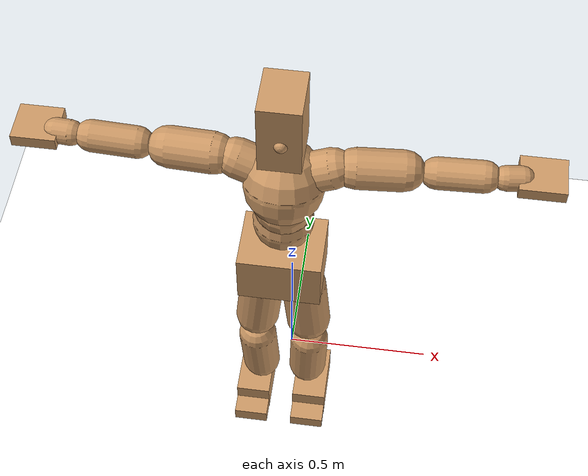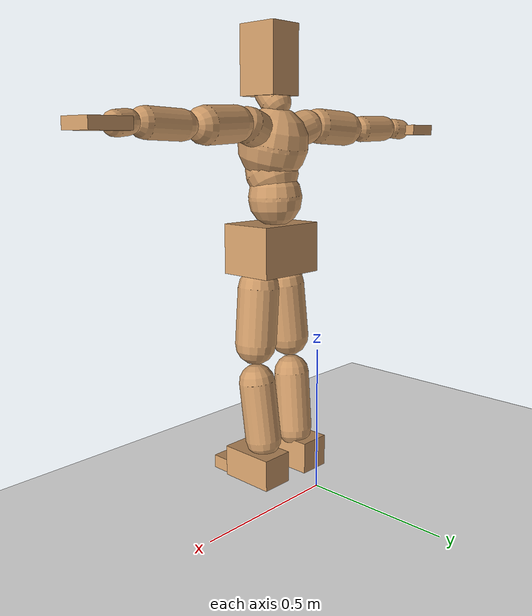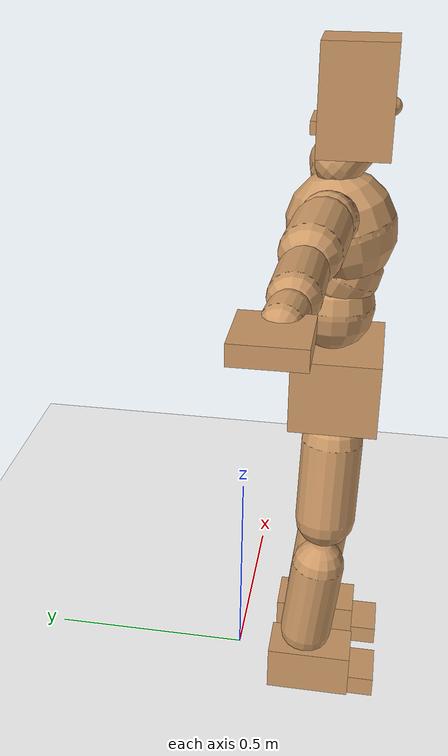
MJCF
<mujoco model="humanoid">
  <option integrator="implicitfast" />

  <visual>
    <global offwidth="1280" offheight="960" />
    <headlight active="1" ambient="0.34 0.34 0.34" diffuse="0.5 0.5 0.5" />
  </visual>

  <default>
    <joint damping="2" stiffness="2" armature="0.01" limited="true" solimplimit="0 .99 .01" />
    <geom condim="1" friction="0.7 0.005 0.0001" solimp=".99 .99 .003" solref="0.015 1" margin="0.001" rgba="0.8 0.6 .4 1" />
    <default class="smplcontact">
      <geom condim="3" friction="1. 0.005 0.0001" solref="0.015 1" solimp="0.98 0.98 0.001" priority="1" />
    </default>
    <default class="stiff_medium">
      <joint stiffness="10" />
    </default>
    <default class="stiff_medium_higher">
      <joint stiffness="50" />
    </default>
    <default class="stiff_high">
      <joint stiffness="100" />
    </default>
  </default>

  <asset>
    <texture type="skybox" builtin="gradient" rgb1="0.99 0.99 0.99" rgb2="0.608 0.828 0.892" width="100" />
    <texture builtin="flat" height="1278" mark="cross" markrgb="1 1 1" name="texgeom" random="0.01" rgb1="0.8 0.6 0.4" rgb2="0.8 0.6 0.4" type="cube" width="127" />
    <texture name="texplane" type="2d" builtin="checker" markrgb="1 1 1" rgb1="0.756 0.772 0.76" rgb2="0.6 0.6 0.6" width="100" height="100" />
    <material name="MatPlane" reflectance="0.5" texture="texplane" texrepeat="1 1" texuniform="true" />
    <material name="geom" texture="texgeom" texuniform="true" />
  </asset>

  <worldbody>
    <light name="tracking_light" pos="0 0 7" dir="0 0 -1" directional="true" cutoff="100" exponent="1" diffuse="1 1 1" specular="0.1 0.1 0.1" mode="trackcom" />
    <camera name="back" pos="0 3 2.4" xyaxes="-1 0 0 0 -1 2" mode="trackcom" />
    <camera name="side" pos="-3 0 2.4" xyaxes="0 -1 0 1 0 2" mode="trackcom" />
    <camera name="front_side" pos="-2.8 -2.8 0.8" xyaxes="0.5 -0.5 0 0.1 0.1 1" mode="trackcom" />
    <geom condim="3" name="floor" pos="0 0 0" rgba="1 1 1 1" size="100 100 .2" type="plane" material="MatPlane" />
    <body name="Pelvis" pos="-0.0018 -0.2233 0.845661" euler="90 0 0">
      <site name="Pelvis" size="0.01" />
      <freejoint name="Pelvis" />
      <geom type="box" pos="-0.0000 -0.0121 -0.0055" size="0.130952 0.088445 0.101675" quat="1.0000 0.0000 0.0000 0.0000" density="3165.830099" name="Pelvis" />
      <body name="L_Hip" pos="0.0616812 -0.0811175 -0.006035">
        <joint name="L_Hip_x" type="hinge" pos="0 0 0" axis="1 0 0" stiffness="12.36851034090909" range="-160.0 22.92" class="stiff_medium" damping="17.851965267063278" armature="0.011451757733951967"/>
        <joint name="L_Hip_y" type="hinge" pos="0 0 0" axis="0 1 0" stiffness="12.43597965909091" range="-70.0 70.0" class="stiff_medium" damping="14.288243721825658" armature="0.016416391329898198"/>
        <joint name="L_Hip_z" type="hinge" pos="0 0 0" axis="0 0 1" stiffness="12.4220025" range="-28.65 90.0" class="stiff_medium" damping="11.923013078833629" armature="0.011444067965534361"/>
        <geom type="capsule" density="2040.816327" fromto="0.00612375 -0.0665625 -0.00079875 0.0243175 -0.266427 -0.003195" size="0.0730312" name="L_Hip" />
        <body name="L_Knee" pos="0.0304412 -0.33299 -0.00399375">
          <joint name="L_Knee_x" type="hinge" pos="0 0 0" axis="1 0 0" range="-5.16 171.89" damping="9.985921488512282" armature="0.01214326888589518" stiffness="2.5662012045454548"/>
          <joint name="L_Knee_y" type="hinge" pos="0 0 0" axis="0 1 0" range="-4.58 6.88" damping="11.810748260390287" armature="0.017374927405609322" stiffness="2.508891318181818"/>
          <joint name="L_Knee_z" type="hinge" pos="0 0 0" axis="0 0 1" range="-6.88 4.58" damping="9.99958638283568" armature="0.012103404813024828" stiffness="2.581704522727273"/>
          <geom type="capsule" density="1234.567901" fromto="-0.00239625 -0.070645 -0.00772125 -0.00967375 -0.28258 -0.0310625" size="0.0642438" name="L_Knee" />
          <body name="L_Ankle" pos="-0.01207 -0.353225 -0.0387837">
            <joint name="L_Ankle_x" type="hinge" pos="0 0 0" axis="1 0 0" range="-45.84 45.84" class="stiff_medium" damping="9.468791834549247" armature="0.016757768795987015" stiffness="14.861766818181819"/>
            <joint name="L_Ankle_y" type="hinge" pos="0 0 0" axis="0 1 0" range="-74.48 22.92" class="stiff_medium" damping="4.770290463367707" armature="0.01701283964948982" stiffness="14.861762954545457"/>
            <joint name="L_Ankle_z" type="hinge" pos="0 0 0" axis="0 0 1" range="-4.58 4.58" class="stiff_medium" damping="9.99782310044421" armature="0.01868262569300733" stiffness="14.861768181818181"/>
            <geom type="box" pos="0.0206787 -0.0212113 0.0214775" size="0.0573563 0.0551 0.100938" quat="1.0000 0.0000 0.0000 0.0000" density="449.071558" name="L_Ankle" class="smplcontact" />
            <body name="L_Toe" pos="0.02343 -0.0495225 0.105879">
              <joint name="L_Toe_x" type="hinge" pos="0 0 0" axis="1 0 0" range="-91.67 22.92" armature="0.01965077153546487" damping="3.4178613882065814" stiffness="2.9723455"/>
              <joint name="L_Toe_y" type="hinge" pos="0 0 0" axis="0 1 0" range="-4.58 4.58" armature="0.020821548461788877" damping="3.5182051473181923" stiffness="2.9723455681818183"/>
              <joint name="L_Toe_z" type="hinge" pos="0 0 0" axis="0 0 1" range="-4.58 4.58" armature="0.023188802507055364" damping="3.7128170335050434" stiffness="2.9723420000000003"/>
              <geom type="box" pos="-0.0026625 0.00488125 0.02201" size="0.0567625 0.02375 0.0589" quat="1.0000 0.0000 0.0000 0.0000" density="423.206892" name="L_Toe" class="smplcontact" />
            </body>
          </body>
        </body>
      </body>
      <body name="R_Hip" pos="-0.0600837 -0.0803187 -0.00381625">
        <joint name="R_Hip_x" type="hinge" pos="0 0 0" axis="1 0 0" stiffness="12.36851034090909" range="-160.0 22.92" class="stiff_medium" damping="17.851965267063278" armature="0.011451757733951967"/>
        <joint name="R_Hip_y" type="hinge" pos="0 0 0" axis="0 1 0" stiffness="12.43597965909091" range="-70.0 70.0" class="stiff_medium" damping="14.288243721825658" armature="0.016416391329898198"/>
        <joint name="R_Hip_z" type="hinge" pos="0 0 0" axis="0 0 1" stiffness="12.4220025" range="-90.0 28.65" class="stiff_medium" damping="11.923013078833629" armature="0.011444067965534361"/>
        <geom type="capsule" density="2040.816327" fromto="-0.00683375 -0.0678937 -0.0015975 -0.0271575 -0.271664 -0.00630125" size="0.0719625" name="R_Hip" />
        <body name="R_Knee" pos="-0.0339913 -0.339557 -0.00789875">
          <joint name="R_Knee_x" type="hinge" pos="0 0 0" axis="1 0 0" range="-5.16 171.89" damping="9.985921488512282" armature="0.01214326888589518" stiffness="2.5662012045454548"/>
          <joint name="R_Knee_y" type="hinge" pos="0 0 0" axis="0 1 0" range="-6.88 4.58" damping="11.810748260390287" armature="0.017374927405609322" stiffness="2.508891318181818"/>
          <joint name="R_Knee_z" type="hinge" pos="0 0 0" axis="0 0 1" range="-4.58 6.88" damping="9.99958638283568" armature="0.012103404813024828" stiffness="2.581704522727273"/>
          <geom type="capsule" density="1234.567901" fromto="0.00284 -0.0707337 -0.00754375 0.0111825 -0.282846 -0.0299975" size="0.0642438" name="R_Knee" />
          <body name="R_Ankle" pos="0.0140225 -0.35358 -0.0375412">
            <joint name="R_Ankle_x" type="hinge" pos="0 0 0" axis="1 0 0" range="-45.84 45.84" class="stiff_medium" damping="9.468791834549247" armature="0.016757768795987015" stiffness="14.861766818181819"/>
            <joint name="R_Ankle_y" type="hinge" pos="0 0 0" axis="0 1 0" range="-22.92 74.48" class="stiff_medium" damping="4.770290463367707" armature="0.01701283964948982" stiffness="14.861762954545457"/>
            <joint name="R_Ankle_z" type="hinge" pos="0 0 0" axis="0 0 1" range="-4.58 4.58" class="stiff_medium" damping="9.99782310044421" armature="0.01868262569300733" stiffness="14.861768181818181"/>
            <geom type="box" pos="-0.018815 -0.0154425 0.02272" size="0.0573563 0.0567625 0.102719" quat="1.0000 0.0000 0.0000 0.0000" density="434.700981" name="R_Ankle" class="smplcontact" />
            <body name="R_Toe" pos="-0.0225425 -0.0426887 0.109429">
              <joint name="R_Toe_x" type="hinge" pos="0 0 0" axis="1 0 0" range="-91.67 22.92" armature="0.01965077153546487" damping="3.4178613882065814" stiffness="2.9723455"/>
              <joint name="R_Toe_y" type="hinge" pos="0 0 0" axis="0 1 0" range="-4.58 4.58" armature="0.020821548461788877" damping="3.5182051473181923" stiffness="2.9723455681818183"/>
              <joint name="R_Toe_z" type="hinge" pos="0 0 0" axis="0 0 1" range="-4.58 4.58" armature="0.023188802507055364" damping="3.7128170335050434" stiffness="2.9723420000000003"/>
              <geom type="box" pos="0.0037275 0.00399375 0.0201463" size="0.0568812 0.02565 0.0585437" quat="1.0000 0.0000 0.0000 0.0000" density="407.384095" name="R_Toe" class="smplcontact" />
            </body>
          </body>
        </body>
      </body>
      <body name="Torso" pos="-0.00235 0.10246 -0.025098">
        <joint name="Torso_x" type="hinge" pos="0 0 0" axis="1 0 0" range="-25.78 57.3" class="stiff_medium" damping="19.941202461893937" armature="0.0126899386743338" stiffness="13.92709840909091"/>
        <joint name="Torso_y" type="hinge" pos="0 0 0" axis="0 1 0" range="-57.3 57.3" class="stiff_high" damping="26.437533070348877" armature="0.01256913373806276" stiffness="139.01975454545453"/>
        <joint name="Torso_z" type="hinge" pos="0 0 0" axis="0 0 1" range="-34.38 34.38" class="stiff_high" damping="26.70168668290355" armature="0.012468405596314638" stiffness="142.9573465116279"/>
        <geom type="capsule" density="2040.816327" fromto="0.00235 0.057152 0.00047 0.00282 0.069842 0.000564" size="0.0942025" name="Torso" />
        <body name="Spine" pos="0.00517 0.127088 0.001034">
          <joint name="Spine_x" type="hinge" pos="0 0 0" axis="1 0 0" stiffness="13.520942727272729" range="-25.78 57.3" class="stiff_medium" damping="19.30614968667705" armature="0.012251854959543182"/>
          <joint name="Spine_y" type="hinge" pos="0 0 0" axis="0 1 0" stiffness="13.61998159090909" range="-57.3 57.3" class="stiff_high" damping="10.429468848945007" armature="0.012478658164968333"/>
          <joint name="Spine_z" type="hinge" pos="0 0 0" axis="0 0 1" stiffness="26.835930909090912" range="-34.38 34.38" class="stiff_high" damping="15.302956796542318" armature="0.01211996994244126"/>
          <geom type="capsule" density="2040.816327" fromto="0.000658 0.022372 0.010716 0.000752 0.027354 0.01316" size="0.0924875" name="Spine" />
          <body name="Chest" pos="0.00141 0.049726 0.023876">
            <joint name="Chest_x" type="hinge" pos="0 0 0" axis="1 0 0" stiffness="12.852892558139537" range="-25.78 57.3" class="stiff_medium" damping="18.678818297121833" armature="0.012064668673648239"/>
            <joint name="Chest_y" type="hinge" pos="0 0 0" axis="0 1 0" stiffness="13.09446418604651" range="-57.3 57.3" class="stiff_high" damping="10.19493632435119" armature="0.01240227420496644"/>
            <joint name="Chest_z" type="hinge" pos="0 0 0" axis="0 0 1" stiffness="26.033544090909086" range="-34.38 34.38" class="stiff_high" damping="15.010761345913915" armature="0.012020973754580498"/>
            <geom type="capsule" density="2040.816327" fromto="-0.000846 0.064108 -0.016262 -0.00094 0.078302 -0.019928" size="0.122745" name="Chest" />
            <body name="Neck" pos="-0.002632 0.201066 -0.040326">
              <joint name="Neck_x" type="hinge" pos="0 0 0" axis="1 0 0" range="-28.65 57.3" class="stiff_medium_higher" damping="11.458142872268247" armature="0.011436855819988415" stiffness="57.39734772727274"/>
              <joint name="Neck_y" type="hinge" pos="0 0 0" axis="0 1 0" range="-40.11 40.11" class="stiff_medium_higher" damping="11.782648325574947" armature="0.012150479253497817" stiffness="57.12976363636364"/>
              <joint name="Neck_z" type="hinge" pos="0 0 0" axis="0 0 1" range="-40.11 40.11" class="stiff_medium_higher" damping="11.3646916074327" armature="0.011419775964869988" stiffness="56.54936477272726"/>
              <geom type="capsule" density="1000" fromto="0.00094 0.01222 0.009682 0.003854 0.04888 0.038634" size="0.05341" name="Neck" />
              <body name="Head" pos="0.0052 0.065 0.0513">
                <joint name="Head_x" type="hinge" pos="0 0 0" axis="1 0 0" range="-28.65 57.3" class="stiff_medium_higher" damping="2.271549721595956" armature="0.01155096934766387" stiffness="55.8388"/>
                <joint name="Head_y" type="hinge" pos="0 0 0" axis="0 1 0" range="-40.11 40.11" class="stiff_medium_higher" damping="2.3135159305113246" armature="0.011981713344327065" stiffness="55.8388"/>
                <joint name="Head_z" type="hinge" pos="0 0 0" axis="0 0 1" range="-40.11 40.11" class="stiff_medium_higher" damping="2.269451669247277" armature="0.011529641752350632" stiffness="55.8388"/>
                <geom type="box" pos="-0.0042 0.0876 -0.0116" size="0.0628725 0.119728 0.07885" quat="1.0000 0.0000 0.0000 0.0000" density="1018.069894" name="Head" />
                <geom type="capsule" name="nose" size="0.02075 0.010375" pos="0 0.07 0.05" quat="1 0 0 0" mass="0" contype="0" conaffinity="0" />
              </body>
            </body>
            <body name="L_Thorax" pos="0.071708 0.110747 -0.031031">
              <joint name="L_Thorax_x" type="hinge" pos="0 0 0" axis="1 0 0" range="-10.89 4.58" class="stiff_medium_higher" damping="28.626748650549768" armature="0.01567730914215938" stiffness="65.34051306818182"/>
              <joint name="L_Thorax_y" type="hinge" pos="0 0 0" axis="0 1 0" range="-28.65 17.19" class="stiff_medium_higher" damping="25.08773278793194" armature="0.012125206485934237" stiffness="64.88490909090909"/>
              <joint name="L_Thorax_z" type="hinge" pos="0 0 0" axis="0 0 1" range="-31.51 40.11" class="stiff_medium_higher" damping="25.086010443016477" armature="0.012121977997280955" stiffness="64.89327897727273"/>
              <geom type="capsule" density="1000" fromto="0.016562 0.005551 -0.001638 0.066248 0.022204 -0.006461" size="0.0618688" name="L_Thorax" />
              <body name="L_Shoulder" pos="0.08281 0.027755 -0.008099">
                <joint name="L_Shoulder_x" type="hinge" pos="0 0 0" axis="1 0 0" range="-97.4 97.4" class="stiff_medium" damping="8.957943445981686" armature="0.017008419106326677" stiffness="13.105397045454543"/>
                <joint name="L_Shoulder_y" type="hinge" pos="0 0 0" axis="0 1 0" range="-108.86 80.21" class="stiff_medium" damping="7.577464584362842" armature="0.012227943711016397" stiffness="13.043432613636362"/>
                <joint name="L_Shoulder_z" type="hinge" pos="0 0 0" axis="0 0 1" range="-97.4 85.94" class="stiff_medium" damping="7.567968848271233" armature="0.012223527931672131" stiffness="13.015462386363637"/>
                <geom type="capsule" density="1000" fromto="0.047229 -0.002366 -0.005005 0.189007 -0.009282 -0.02002" size="0.0613938" name="L_Shoulder" />
                <body name="L_Elbow" pos="0.236236 -0.011648 -0.025025">
                  <joint name="L_Elbow_x" type="hinge" pos="0 0 0" axis="1 0 0" range="-17.19 4.58" damping="8.02999271813939" armature="0.01926050643038712" stiffness="2.6782590909090915"/>
                  <joint name="L_Elbow_y" type="hinge" pos="0 0 0" axis="0 1 0" range="-180.0 17.19" damping="6.529036199761387" armature="0.01273410511843796" stiffness="2.678056340909091"/>
                  <joint name="L_Elbow_z" type="hinge" pos="0 0 0" axis="0 0 1" range="-100.84 4.58" damping="6.524422721938703" armature="0.012710921306049599" stiffness="2.6791506818181814"/>
                  <geom type="capsule" density="1000" fromto="0.045318 0.001638 -0.000182 0.181454 0.006552 -0.000819" size="0.0480938" name="L_Elbow" />
                  <body name="L_Wrist" pos="0.226772 0.00819 -0.001092">
                    <joint name="L_Wrist_x" type="hinge" pos="0 0 0" axis="1 0 0" range="-180.0 22.92" armature="0.02019987910712893" damping="3.4354746392366655" stiffness="2.9214249090909092"/>
                    <joint name="L_Wrist_y" type="hinge" pos="0 0 0" axis="0 1 0" range="-17.19 17.19" armature="0.014674368014772642" damping="2.916822459527683" stiffness="2.8988823409090907"/>
                    <joint name="L_Wrist_z" type="hinge" pos="0 0 0" axis="0 0 1" range="-22.92 22.92" armature="0.014359094784382772" damping="2.8893808376416996" stiffness="2.9070501136363633"/>
                    <geom type="capsule" density="1000" fromto="0.015288 -0.001456 -0.00273 0.061152 -0.005915 -0.01092" size="0.0377625" name="L_Wrist" class="smplcontact" />
                    <body name="L_Hand" pos="0.07644 -0.007462 -0.013559">
                      <joint name="L_Hand_x" type="hinge" pos="0 0 0" axis="1 0 0" range="-17.19 17.19" armature="0.023189285732447412" damping="3.7596272721316395" stiffness="3.0477"/>
                      <joint name="L_Hand_y" type="hinge" pos="0 0 0" axis="0 1 0" range="-51.57 51.57" armature="0.018478553424018586" damping="3.356101526187235" stiffness="3.0477"/>
                      <joint name="L_Hand_z" type="hinge" pos="0 0 0" axis="0 0 1" range="-91.67 91.67" armature="0.01722284324673942" damping="3.2400635599656904" stiffness="3.0477"/>
                      <geom type="box" pos="0.044863 0.00091 -0.005278" size="0.0694688 0.0187625 0.0638875" quat="1.0000 0.0000 0.0000 0.0000" density="400.552564" name="L_Hand" class="smplcontact" />
                    </body>
                  </body>
                </body>
              </body>
            </body>
            <body name="R_Thorax" pos="-0.074438 0.108108 -0.035126">
              <joint name="R_Thorax_x" type="hinge" pos="0 0 0" axis="1 0 0" range="-10.89 4.58" class="stiff_medium_higher" damping="28.626748650549768" armature="0.01567730914215938" stiffness="65.34051306818182"/>
              <joint name="R_Thorax_y" type="hinge" pos="0 0 0" axis="0 1 0" range="-17.19 28.65" class="stiff_medium_higher" damping="25.08773278793194" armature="0.012125206485934237" stiffness="64.88490909090909"/>
              <joint name="R_Thorax_z" type="hinge" pos="0 0 0" axis="0 0 1" range="-40.11 31.51" class="stiff_medium_higher" damping="25.086010443016477" armature="0.012121977997280955" stiffness="64.89327897727273"/>
              <geom type="capsule" density="1000" fromto="-0.017472 0.005915 -0.001638 -0.069888 0.02366 -0.006643" size="0.0606812" name="R_Thorax" />
              <body name="R_Shoulder" pos="-0.08736 0.029666 -0.008281">
                <joint name="R_Shoulder_x" type="hinge" pos="0 0 0" axis="1 0 0" range="-97.4 97.4" class="stiff_medium" damping="8.957943445981686" armature="0.017008419106326677" stiffness="13.105397045454543"/>
                <joint name="R_Shoulder_y" type="hinge" pos="0 0 0" axis="0 1 0" range="-80.21 108.86" class="stiff_medium" damping="7.577464584362842" armature="0.012227943711016397" stiffness="13.043432613636362"/>
                <joint name="R_Shoulder_z" type="hinge" pos="0 0 0" axis="0 0 1" range="-85.94 97.4" class="stiff_medium" damping="7.567968848271233" armature="0.012223527931672131" stiffness="13.015462386363637"/>
                <geom type="capsule" density="1000" fromto="-0.046137 -0.002457 -0.003913 -0.18473 -0.009737 -0.015561" size="0.0630563" name="R_Shoulder" />
                <body name="R_Elbow" pos="-0.230867 -0.012103 -0.019474">
                  <joint name="R_Elbow_x" type="hinge" pos="0 0 0" axis="1 0 0" range="-17.19 4.58" damping="8.02999271813939" armature="0.01926050643038712" stiffness="2.6782590909090915"/>
                  <joint name="R_Elbow_y" type="hinge" pos="0 0 0" axis="0 1 0" range="-17.19 180.0" damping="6.529036199761387" armature="0.01273410511843796" stiffness="2.678056340909091"/>
                  <joint name="R_Elbow_z" type="hinge" pos="0 0 0" axis="0 0 1" range="-4.58 100.84" damping="6.524422721938703" armature="0.012710921306049599" stiffness="2.6791506818181814"/>
                  <geom type="capsule" density="1000" fromto="-0.046501 0.001456 -0.001001 -0.185822 0.005642 -0.004004" size="0.04845" name="R_Elbow" />
                  <body name="R_Wrist" pos="-0.232323 0.007098 -0.005096">
                    <joint name="R_Wrist_x" type="hinge" pos="0 0 0" axis="1 0 0" range="-180.0 22.92" armature="0.02019987910712893" damping="3.4354746392366655" stiffness="2.9214249090909092"/>
                    <joint name="R_Wrist_y" type="hinge" pos="0 0 0" axis="0 1 0" range="-17.19 17.19" armature="0.014674368014772642" damping="2.916822459527683" stiffness="2.8988823409090907"/>
                    <joint name="R_Wrist_z" type="hinge" pos="0 0 0" axis="0 0 1" range="-22.92 22.92" armature="0.014359094784382772" damping="2.8893808376416996" stiffness="2.9070501136363633"/>
                    <geom type="capsule" density="1000" fromto="-0.015379 -0.001092 -0.001911 -0.061607 -0.004459 -0.007553" size="0.0387125" name="R_Wrist" class="smplcontact" />
                    <body name="R_Hand" pos="-0.076986 -0.005551 -0.009373">
                      <joint name="R_Hand_x" type="hinge" pos="0 0 0" axis="1 0 0" range="-17.19 17.19" armature="0.023189285732447412" damping="3.7596272721316395" stiffness="3.0477"/>
                      <joint name="R_Hand_y" type="hinge" pos="0 0 0" axis="0 1 0" range="-51.57 51.57" armature="0.018478553424018586" damping="3.356101526187235" stiffness="3.0477"/>
                      <joint name="R_Hand_z" type="hinge" pos="0 0 0" axis="0 0 1" range="-91.67 91.67" armature="0.01722284324673942" damping="3.2400635599656904" stiffness="3.0477"/>
                      <geom type="box" pos="-0.042042 -0.000819 -0.007189" size="0.0675687 0.019475 0.0648375" quat="1.0000 0.0000 0.0000 0.0000" density="403.679611" name="R_Hand" class="smplcontact" />
                    </body>
                  </body>
                </body>
              </body>
            </body>
          </body>
        </body>
      </body>
    </body>
  </worldbody>
  <actuator>
    <general name="L_Hip_x" joint="L_Hip_x" biastype="affine" gainprm="355.38448690418045" biasprm="-266.32465266140963 -222.6331861363636 -2.380262035608437" ctrllimited="true" ctrlrange="-1 1" forcerange="-445.2663722727272 445.2663722727272" />
    <general name="L_Hip_y" joint="L_Hip_y" biastype="affine" gainprm="273.4814763603447" biasprm="0.0 -223.8476338636364 -2.8576487443651315" ctrllimited="true" ctrlrange="-1 1" forcerange="-447.6952677272728 447.6952677272728" />
    <general name="L_Hip_z" joint="L_Hip_z" biastype="affine" gainprm="231.5150519349553" biasprm="119.70879423691112 -223.596045 -2.3846026157667257" ctrllimited="true" ctrlrange="-1 1" forcerange="-447.19209 447.19209" />
    <general name="L_Knee_x" joint="L_Knee_x" biastype="affine" gainprm="356.84245367927053" biasprm="336.0425998415406 -230.95810840909093 -2.4964803721280706" ctrllimited="true" ctrlrange="-1 1" forcerange="-461.91621681818185 461.91621681818185" />
    <general name="L_Knee_y" joint="L_Knee_y" biastype="affine" gainprm="22.581685139495182" biasprm="4.532100856966746 -225.8002186363636 -2.952687065097572" ctrllimited="true" ctrlrange="-1 1" forcerange="-451.6004372727272 451.6004372727272" />
    <general name="L_Knee_z" joint="L_Knee_z" biastype="affine" gainprm="23.237052252102792" biasprm="-4.663631778345238 -232.35340704545456 -2.49989659570892" ctrllimited="true" ctrlrange="-1 1" forcerange="-464.7068140909091 464.7068140909091" />
    <general name="L_Ankle_x" joint="L_Ankle_x" biastype="affine" gainprm="107.01260320769558" biasprm="0.0 -133.75590136363635 -3.156263944849749" ctrllimited="true" ctrlrange="-1 1" forcerange="-267.5118027272727 267.5118027272727" />
    <general name="L_Ankle_y" joint="L_Ankle_y" biastype="affine" gainprm="113.68918894785185" biasprm="-60.182901254119514 -133.7558665909091 -3.180193642245138" ctrllimited="true" ctrlrange="-1 1" forcerange="-267.5117331818182 267.5117331818182" />
    <general name="L_Ankle_z" joint="L_Ankle_z" biastype="affine" gainprm="10.691923378312188" biasprm="0.0 -133.75591363636363 -3.33260770014807" ctrllimited="true" ctrlrange="-1 1" forcerange="-267.51182727272726 267.51182727272726" />
    <general name="L_Toe_x" joint="L_Toe_x" biastype="affine" gainprm="107.00298219714685" biasprm="-64.19805415877342 -107.004438 -1.3671445552826327" ctrllimited="true" ctrlrange="-1 1" forcerange="-214.008876 214.008876" />
    <general name="L_Toe_y" joint="L_Toe_y" biastype="affine" gainprm="8.553515484852044" biasprm="0.0 -107.00444045454546 -1.407282058927277" ctrllimited="true" ctrlrange="-1 1" forcerange="-214.00888090909092 214.00888090909092" />
    <general name="L_Toe_z" joint="L_Toe_z" biastype="affine" gainprm="8.553505216699257" biasprm="0.0 -107.00431200000001 -1.4851268134020175" ctrllimited="true" ctrlrange="-1 1" forcerange="-214.00862400000003 214.00862400000003" />
    <general name="R_Hip_x" joint="R_Hip_x" biastype="affine" gainprm="355.38448690418045" biasprm="-266.32465266140963 -222.6331861363636 -2.380262035608437" ctrllimited="true" ctrlrange="-1 1" forcerange="-445.2663722727272 445.2663722727272" />
    <general name="R_Hip_y" joint="R_Hip_y" biastype="affine" gainprm="273.4814763603447" biasprm="0.0 -223.8476338636364 -2.8576487443651315" ctrllimited="true" ctrlrange="-1 1" forcerange="-447.6952677272728 447.6952677272728" />
    <general name="R_Hip_z" joint="R_Hip_z" biastype="affine" gainprm="231.5150519349553" biasprm="-119.70879423691112 -223.596045 -2.3846026157667257" ctrllimited="true" ctrlrange="-1 1" forcerange="-447.19209 447.19209" />
    <general name="R_Knee_x" joint="R_Knee_x" biastype="affine" gainprm="356.84245367927053" biasprm="336.0425998415406 -230.95810840909093 -2.4964803721280706" ctrllimited="true" ctrlrange="-1 1" forcerange="-461.91621681818185 461.91621681818185" />
    <general name="R_Knee_y" joint="R_Knee_y" biastype="affine" gainprm="22.581685139495182" biasprm="-4.532100856966746 -225.8002186363636 -2.952687065097572" ctrllimited="true" ctrlrange="-1 1" forcerange="-451.6004372727272 451.6004372727272" />
    <general name="R_Knee_z" joint="R_Knee_z" biastype="affine" gainprm="23.237052252102792" biasprm="4.663631778345238 -232.35340704545456 -2.49989659570892" ctrllimited="true" ctrlrange="-1 1" forcerange="-464.7068140909091 464.7068140909091" />
    <general name="R_Ankle_x" joint="R_Ankle_x" biastype="affine" gainprm="107.01260320769558" biasprm="0.0 -133.75590136363635 -3.156263944849749" ctrllimited="true" ctrlrange="-1 1" forcerange="-267.5118027272727 267.5118027272727" />
    <general name="R_Ankle_y" joint="R_Ankle_y" biastype="affine" gainprm="113.68918894785185" biasprm="60.182901254119514 -133.7558665909091 -3.180193642245138" ctrllimited="true" ctrlrange="-1 1" forcerange="-267.5117331818182 267.5117331818182" />
    <general name="R_Ankle_z" joint="R_Ankle_z" biastype="affine" gainprm="10.691923378312188" biasprm="0.0 -133.75591363636363 -3.33260770014807" ctrllimited="true" ctrlrange="-1 1" forcerange="-267.51182727272726 267.51182727272726" />
    <general name="R_Toe_x" joint="R_Toe_x" biastype="affine" gainprm="107.00298219714685" biasprm="-64.19805415877342 -107.004438 -1.3671445552826327" ctrllimited="true" ctrlrange="-1 1" forcerange="-214.008876 214.008876" />
    <general name="R_Toe_y" joint="R_Toe_y" biastype="affine" gainprm="8.553515484852044" biasprm="0.0 -107.00444045454546 -1.407282058927277" ctrllimited="true" ctrlrange="-1 1" forcerange="-214.00888090909092 214.00888090909092" />
    <general name="R_Toe_z" joint="R_Toe_z" biastype="affine" gainprm="8.553505216699257" biasprm="0.0 -107.00431200000001 -1.4851268134020175" ctrllimited="true" ctrlrange="-1 1" forcerange="-214.00862400000003 214.00862400000003" />
    <general name="Torso_x" joint="Torso_x" biastype="affine" gainprm="242.33477837153734" biasprm="91.94020479382348 -334.25036181818183 -5.317653989838384" ctrllimited="true" ctrlrange="-1 1" forcerange="-501.3755427272728 501.3755427272728" />
    <general name="Torso_y" joint="Torso_y" biastype="affine" gainprm="333.6719878420662" biasprm="0.0 -333.6474109090909 -5.287506614069775" ctrllimited="true" ctrlrange="-1 1" forcerange="-500.4711163636364 500.4711163636364" />
    <general name="Torso_z" joint="Torso_z" biastype="affine" gainprm="205.87374280638136" biasprm="0.0 -343.097631627907 -5.34033733658071" ctrllimited="true" ctrlrange="-1 1" forcerange="-514.6464474418605 514.6464474418605" />
    <general name="Spine_x" joint="Spine_x" biastype="affine" gainprm="235.26757426005477" biasprm="89.25895450983299 -324.5026254545455 -5.14830658311388" ctrllimited="true" ctrlrange="-1 1" forcerange="-486.7539381818182 486.7539381818182" />
    <general name="Spine_y" joint="Spine_y" biastype="affine" gainprm="326.90363658533556" biasprm="0.0 -326.87955818181814 -5.214734424472503" ctrllimited="true" ctrlrange="-1 1" forcerange="-490.31933727272724 490.31933727272724" />
    <general name="Spine_z" joint="Spine_z" biastype="affine" gainprm="193.2329353041896" biasprm="0.0 -322.0311709090909 -5.10098559884744" ctrllimited="true" ctrlrange="-1 1" forcerange="-483.0467563636364 483.0467563636364" />
    <general name="Chest_x" joint="Chest_x" biastype="affine" gainprm="223.643344652236" biasprm="84.84879903031388 -308.4694213953489 -4.9810182125658224" ctrllimited="true" ctrlrange="-1 1" forcerange="-462.7041320930233 462.7041320930233" />
    <general name="Chest_y" joint="Chest_y" biastype="affine" gainprm="314.29028982037875" biasprm="0.0 -314.26714046511626 -5.097468162175595" ctrllimited="true" ctrlrange="-1 1" forcerange="-471.40071069767436 471.40071069767436" />
    <general name="Chest_z" joint="Chest_z" biastype="affine" gainprm="187.4553246577805" biasprm="0.0 -312.402529090909 -5.003587115304638" ctrllimited="true" ctrlrange="-1 1" forcerange="-468.60379363636355 468.60379363636355" />
    <general name="Neck_x" joint="Neck_x" biastype="affine" gainprm="30.996850875757126" biasprm="10.332283625252376 -41.326090363636375 -0.9166514297814597" ctrllimited="true" ctrlrange="-1 1" forcerange="-82.65218072727275 82.65218072727275" />
    <general name="Neck_y" joint="Neck_y" biastype="affine" gainprm="28.795521834737592" biasprm="0.0 -41.133429818181824 -0.9426118660459958" ctrllimited="true" ctrlrange="-1 1" forcerange="-82.26685963636365 82.26685963636365" />
    <general name="Neck_z" joint="Neck_z" biastype="affine" gainprm="28.50297925995858" biasprm="0.0 -40.71554263636363 -0.909175328594616" ctrllimited="true" ctrlrange="-1 1" forcerange="-81.43108527272726 81.43108527272726" />
    <general name="Head_x" joint="Head_x" biastype="affine" gainprm="20.103448738959912" biasprm="6.701149579653304 -26.802624 -0.9086198886383825" ctrllimited="true" ctrlrange="-1 1" forcerange="-53.605248 53.605248" />
    <general name="Head_y" joint="Head_y" biastype="affine" gainprm="18.763218823029252" biasprm="0.0 -26.802624 -0.9254063722045299" ctrllimited="true" ctrlrange="-1 1" forcerange="-53.605248 53.605248" />
    <general name="Head_z" joint="Head_z" biastype="affine" gainprm="18.763218823029252" biasprm="0.0 -26.802624 -0.9077806676989107" ctrllimited="true" ctrlrange="-1 1" forcerange="-53.605248 53.605248" />
    <general name="L_Thorax_x" joint="L_Thorax_x" biastype="affine" gainprm="21.17051718130072" biasprm="-8.635162470200878 -156.81723136363635 -2.2901398920439813" ctrllimited="true" ctrlrange="-1 1" forcerange="-313.6344627272727 313.6344627272727" />
    <general name="L_Thorax_y" joint="L_Thorax_y" biastype="affine" gainprm="62.294101059533986" biasprm="-15.573525264883497 -155.72378181818183 -2.0070186230345555" ctrllimited="true" ctrlrange="-1 1" forcerange="-311.44756363636367 311.44756363636367" />
    <general name="L_Thorax_z" joint="L_Thorax_z" biastype="affine" gainprm="97.34029305159014" biasprm="11.688446247468235 -155.74386954545454 -2.006880835441318" ctrllimited="true" ctrlrange="-1 1" forcerange="-311.4877390909091 311.4877390909091" />
    <general name="L_Shoulder_x" joint="L_Shoulder_x" biastype="affine" gainprm="106.93693809143352" biasprm="0.0 -62.90590581818181 -2.3887849189284496" ctrllimited="true" ctrlrange="-1 1" forcerange="-125.81181163636361 125.81181163636361" />
    <general name="L_Shoulder_y" joint="L_Shoulder_y" biastype="affine" gainprm="103.3006685749538" biasprm="-15.653272093258721 -62.60847654545454 -2.020657222496758" ctrllimited="true" ctrlrange="-1 1" forcerange="-125.21695309090909 125.21695309090909" />
    <general name="L_Shoulder_z" joint="L_Shoulder_z" biastype="affine" gainprm="99.95521041982744" biasprm="-6.247882139256164 -62.474219454545455 -2.0181250262056625" ctrllimited="true" ctrlrange="-1 1" forcerange="-124.94843890909091 124.94843890909091" />
    <general name="L_Elbow_x" joint="L_Elbow_x" biastype="affine" gainprm="18.317276006760743" biasprm="-10.610052845441114 -96.41732727272729 -1.2847988349023025" ctrllimited="true" ctrlrange="-1 1" forcerange="-192.83465454545458 192.83465454545458" />
    <general name="L_Elbow_y" joint="L_Elbow_y" biastype="affine" gainprm="165.90308777244488" biasprm="-136.9779487815394 -96.41002827272727 -1.044645791961822" ctrllimited="true" ctrlrange="-1 1" forcerange="-192.82005654545455 192.82005654545455" />
    <general name="L_Elbow_z" joint="L_Elbow_z" biastype="affine" gainprm="88.72990665272499" biasprm="-81.02011776125318 -96.44942454545453 -1.0439076355101926" ctrllimited="true" ctrlrange="-1 1" forcerange="-192.89884909090907 192.89884909090907" />
    <general name="L_Wrist_x" joint="L_Wrist_x" biastype="affine" gainprm="31.039749223624924" biasprm="-24.027812970860452 -17.528549454545455 -1.3741898556946663" ctrllimited="true" ctrlrange="-1 1" forcerange="-35.05709890909091 35.05709890909091" />
    <general name="L_Wrist_y" joint="L_Wrist_y" biastype="affine" gainprm="5.218372577915538" biasprm="0.0 -17.393294045454546 -1.1667289838110733" ctrllimited="true" ctrlrange="-1 1" forcerange="-34.78658809090909 34.78658809090909" />
    <general name="L_Wrist_z" joint="L_Wrist_z" biastype="affine" gainprm="6.977434202391674" biasprm="0.0 -17.442300681818182 -1.1557523350566798" ctrllimited="true" ctrlrange="-1 1" forcerange="-34.884601363636364 34.884601363636364" />
    <general name="L_Hand_x" joint="L_Hand_x" biastype="affine" gainprm="5.4862640960880364" biasprm="0.0 -18.2862 -1.503850908852656" ctrllimited="true" ctrlrange="-1 1" forcerange="-36.5724 36.5724" />
    <general name="L_Hand_y" joint="L_Hand_y" biastype="affine" gainprm="16.458792288264107" biasprm="0.0 -18.2862 -1.342440610474894" ctrllimited="true" ctrlrange="-1 1" forcerange="-36.5724 36.5724" />
    <general name="L_Hand_z" joint="L_Hand_z" biastype="affine" gainprm="29.256883635159408" biasprm="0.0 -18.2862 -1.2960254239862763" ctrllimited="true" ctrlrange="-1 1" forcerange="-36.5724 36.5724" />
    <general name="R_Thorax_x" joint="R_Thorax_x" biastype="affine" gainprm="21.17051718130072" biasprm="-8.635162470200878 -156.81723136363635 -2.2901398920439813" ctrllimited="true" ctrlrange="-1 1" forcerange="-313.6344627272727 313.6344627272727" />
    <general name="R_Thorax_y" joint="R_Thorax_y" biastype="affine" gainprm="62.294101059533986" biasprm="15.573525264883488 -155.72378181818183 -2.0070186230345555" ctrllimited="true" ctrlrange="-1 1" forcerange="-311.44756363636367 311.44756363636367" />
    <general name="R_Thorax_z" joint="R_Thorax_z" biastype="affine" gainprm="97.34029305159014" biasprm="-11.688446247468235 -155.74386954545454 -2.006880835441318" ctrllimited="true" ctrlrange="-1 1" forcerange="-311.4877390909091 311.4877390909091" />
    <general name="R_Shoulder_x" joint="R_Shoulder_x" biastype="affine" gainprm="106.93693809143352" biasprm="0.0 -62.90590581818181 -2.3887849189284496" ctrllimited="true" ctrlrange="-1 1" forcerange="-125.81181163636361 125.81181163636361" />
    <general name="R_Shoulder_y" joint="R_Shoulder_y" biastype="affine" gainprm="103.3006685749538" biasprm="15.653272093258721 -62.60847654545454 -2.020657222496758" ctrllimited="true" ctrlrange="-1 1" forcerange="-125.21695309090909 125.21695309090909" />
    <general name="R_Shoulder_z" joint="R_Shoulder_z" biastype="affine" gainprm="99.95521041982744" biasprm="6.247882139256149 -62.474219454545455 -2.0181250262056625" ctrllimited="true" ctrlrange="-1 1" forcerange="-124.94843890909091 124.94843890909091" />
    <general name="R_Elbow_x" joint="R_Elbow_x" biastype="affine" gainprm="18.317276006760743" biasprm="-10.610052845441114 -96.41732727272729 -1.2847988349023025" ctrllimited="true" ctrlrange="-1 1" forcerange="-192.83465454545458 192.83465454545458" />
    <general name="R_Elbow_y" joint="R_Elbow_y" biastype="affine" gainprm="165.90308777244488" biasprm="136.9779487815394 -96.41002827272727 -1.044645791961822" ctrllimited="true" ctrlrange="-1 1" forcerange="-192.82005654545455 192.82005654545455" />
    <general name="R_Elbow_z" joint="R_Elbow_z" biastype="affine" gainprm="88.72990665272499" biasprm="81.02011776125316 -96.44942454545453 -1.0439076355101926" ctrllimited="true" ctrlrange="-1 1" forcerange="-192.89884909090907 192.89884909090907" />
    <general name="R_Wrist_x" joint="R_Wrist_x" biastype="affine" gainprm="31.039749223624924" biasprm="-24.027812970860452 -17.528549454545455 -1.3741898556946663" ctrllimited="true" ctrlrange="-1 1" forcerange="-35.05709890909091 35.05709890909091" />
    <general name="R_Wrist_y" joint="R_Wrist_y" biastype="affine" gainprm="5.218372577915538" biasprm="0.0 -17.393294045454546 -1.1667289838110733" ctrllimited="true" ctrlrange="-1 1" forcerange="-34.78658809090909 34.78658809090909" />
    <general name="R_Wrist_z" joint="R_Wrist_z" biastype="affine" gainprm="6.977434202391674" biasprm="0.0 -17.442300681818182 -1.1557523350566798" ctrllimited="true" ctrlrange="-1 1" forcerange="-34.884601363636364 34.884601363636364" />
    <general name="R_Hand_x" joint="R_Hand_x" biastype="affine" gainprm="5.4862640960880364" biasprm="0.0 -18.2862 -1.503850908852656" ctrllimited="true" ctrlrange="-1 1" forcerange="-36.5724 36.5724" />
    <general name="R_Hand_y" joint="R_Hand_y" biastype="affine" gainprm="16.458792288264107" biasprm="0.0 -18.2862 -1.342440610474894" ctrllimited="true" ctrlrange="-1 1" forcerange="-36.5724 36.5724" />
    <general name="R_Hand_z" joint="R_Hand_z" biastype="affine" gainprm="29.256883635159408" biasprm="0.0 -18.2862 -1.2960254239862763" ctrllimited="true" ctrlrange="-1 1" forcerange="-36.5724 36.5724" />
  </actuator>
  <contact>
    <exclude body1="Torso" body2="Chest" />
    <exclude body1="Head" body2="Chest" />
    <exclude body1="R_Knee" body2="R_Toe" />
    <exclude body1="R_Knee" body2="L_Ankle" />
    <exclude body1="R_Knee" body2="L_Toe" />
    <exclude body1="L_Knee" body2="L_Toe" />
    <exclude body1="L_Knee" body2="R_Ankle" />
    <exclude body1="L_Knee" body2="R_Toe" />
    <exclude body1="L_Shoulder" body2="Chest" />
    <exclude body1="R_Shoulder" body2="Chest" />
  </contact>
  <sensor>
    <framelinvel name="sensor_Pelvis_framelinvel" objtype="xbody" objname="Pelvis" />
    <framelinvel name="sensor_L_Hip_framelinvel" objtype="xbody" objname="L_Hip" />
    <framelinvel name="sensor_L_Knee_framelinvel" objtype="xbody" objname="L_Knee" />
    <framelinvel name="sensor_L_Ankle_framelinvel" objtype="xbody" objname="L_Ankle" />
    <framelinvel name="sensor_L_Toe_framelinvel" objtype="xbody" objname="L_Toe" />
    <framelinvel name="sensor_R_Hip_framelinvel" objtype="xbody" objname="R_Hip" />
    <framelinvel name="sensor_R_Knee_framelinvel" objtype="xbody" objname="R_Knee" />
    <framelinvel name="sensor_R_Ankle_framelinvel" objtype="xbody" objname="R_Ankle" />
    <framelinvel name="sensor_R_Toe_framelinvel" objtype="xbody" objname="R_Toe" />
    <framelinvel name="sensor_Torso_framelinvel" objtype="xbody" objname="Torso" />
    <framelinvel name="sensor_Spine_framelinvel" objtype="xbody" objname="Spine" />
    <framelinvel name="sensor_Chest_framelinvel" objtype="xbody" objname="Chest" />
    <framelinvel name="sensor_Neck_framelinvel" objtype="xbody" objname="Neck" />
    <framelinvel name="sensor_Head_framelinvel" objtype="xbody" objname="Head" />
    <framelinvel name="sensor_L_Thorax_framelinvel" objtype="xbody" objname="L_Thorax" />
    <framelinvel name="sensor_L_Shoulder_framelinvel" objtype="xbody" objname="L_Shoulder" />
    <framelinvel name="sensor_L_Elbow_framelinvel" objtype="xbody" objname="L_Elbow" />
    <framelinvel name="sensor_L_Wrist_framelinvel" objtype="xbody" objname="L_Wrist" />
    <framelinvel name="sensor_L_Hand_framelinvel" objtype="xbody" objname="L_Hand" />
    <framelinvel name="sensor_R_Thorax_framelinvel" objtype="xbody" objname="R_Thorax" />
    <framelinvel name="sensor_R_Shoulder_framelinvel" objtype="xbody" objname="R_Shoulder" />
    <framelinvel name="sensor_R_Elbow_framelinvel" objtype="xbody" objname="R_Elbow" />
    <framelinvel name="sensor_R_Wrist_framelinvel" objtype="xbody" objname="R_Wrist" />
    <framelinvel name="sensor_R_Hand_framelinvel" objtype="xbody" objname="R_Hand" />
    <frameangvel name="sensor_Pelvis_frameangvel" objtype="xbody" objname="Pelvis" />
    <frameangvel name="sensor_L_Hip_frameangvel" objtype="xbody" objname="L_Hip" />
    <frameangvel name="sensor_L_Knee_frameangvel" objtype="xbody" objname="L_Knee" />
    <frameangvel name="sensor_L_Ankle_frameangvel" objtype="xbody" objname="L_Ankle" />
    <frameangvel name="sensor_L_Toe_frameangvel" objtype="xbody" objname="L_Toe" />
    <frameangvel name="sensor_R_Hip_frameangvel" objtype="xbody" objname="R_Hip" />
    <frameangvel name="sensor_R_Knee_frameangvel" objtype="xbody" objname="R_Knee" />
    <frameangvel name="sensor_R_Ankle_frameangvel" objtype="xbody" objname="R_Ankle" />
    <frameangvel name="sensor_R_Toe_frameangvel" objtype="xbody" objname="R_Toe" />
    <frameangvel name="sensor_Torso_frameangvel" objtype="xbody" objname="Torso" />
    <frameangvel name="sensor_Spine_frameangvel" objtype="xbody" objname="Spine" />
    <frameangvel name="sensor_Chest_frameangvel" objtype="xbody" objname="Chest" />
    <frameangvel name="sensor_Neck_frameangvel" objtype="xbody" objname="Neck" />
    <frameangvel name="sensor_Head_frameangvel" objtype="xbody" objname="Head" />
    <frameangvel name="sensor_L_Thorax_frameangvel" objtype="xbody" objname="L_Thorax" />
    <frameangvel name="sensor_L_Shoulder_frameangvel" objtype="xbody" objname="L_Shoulder" />
    <frameangvel name="sensor_L_Elbow_frameangvel" objtype="xbody" objname="L_Elbow" />
    <frameangvel name="sensor_L_Wrist_frameangvel" objtype="xbody" objname="L_Wrist" />
    <frameangvel name="sensor_L_Hand_frameangvel" objtype="xbody" objname="L_Hand" />
    <frameangvel name="sensor_R_Thorax_frameangvel" objtype="xbody" objname="R_Thorax" />
    <frameangvel name="sensor_R_Shoulder_frameangvel" objtype="xbody" objname="R_Shoulder" />
    <frameangvel name="sensor_R_Elbow_frameangvel" objtype="xbody" objname="R_Elbow" />
    <frameangvel name="sensor_R_Wrist_frameangvel" objtype="xbody" objname="R_Wrist" />
    <frameangvel name="sensor_R_Hand_frameangvel" objtype="xbody" objname="R_Hand" />
    <subtreelinvel name="Chest_subtreelinvel" body="Chest" />
    <gyro name="Pelvis_gyro" site="Pelvis" />
  </sensor>
</mujoco>
